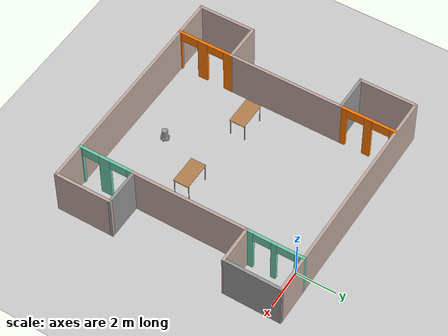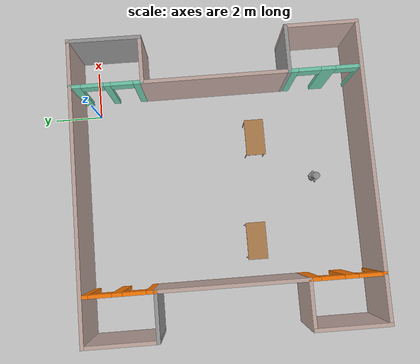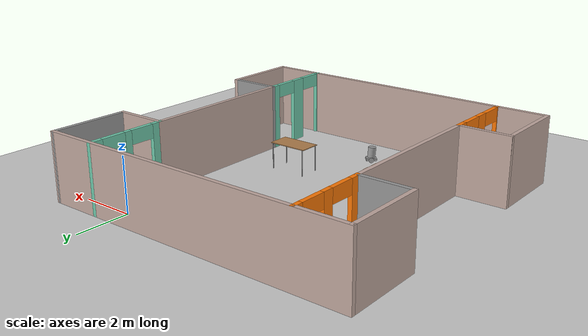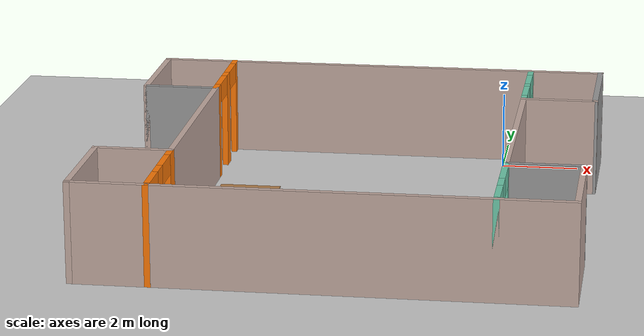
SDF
<sdf version="1.6">
 <world name="default">
  <model name="ground_plane">
   <static>1</static>
   <link name="link">
    <collision name="collision">
     <geometry><plane><normal>0 0 1</normal><size>100 100</size></plane></geometry>
     <surface><friction><ode><mu>100</mu><mu2>50</mu2></ode></friction></surface>
    </collision>
    <visual name="visual">
     <cast_shadows>0</cast_shadows>
     <geometry><plane><normal>0 0 1</normal><size>100 100</size></plane></geometry>
     <material>
      <script><uri>file://media/materials/scripts/gazebo.material</uri><name>Gazebo/Grey</name></script>
     </material>
    </visual>
   </link>
  </model>
  <model name="updated_buliding_2">
   <pose>-3.40181 -5.06678 0 0 -0 0</pose>
   <link name="Wall_0">
    <collision name="Wall_0_Collision">
     <geometry><box><size>12 0.15 2.5</size></box></geometry>
     <pose>0 0 1.25 0 -0 0</pose>
    </collision>
    <visual name="Wall_0_Visual">
     <pose>0 0 1.25 0 -0 0</pose>
     <geometry><box><size>12 0.15 2.5</size></box></geometry>
     <material>
      <script><uri>file://media/materials/scripts/gazebo.material</uri><name>Gazebo/Grey</name></script>
      <ambient>0.760784 0.662745 0.627451 1</ambient>
     </material>
     <meta><layer>0</layer></meta>
    </visual>
    <pose>0.009793 5.77474 0 0 -0 3.14159</pose>
   </link>
   <link name="Wall_10">
    <collision name="Wall_10_Collision">
     <geometry><box><size>2 0.15 2.5</size></box></geometry>
     <pose>0 0 1.25 0 -0 0</pose>
    </collision>
    <visual name="Wall_10_Visual">
     <pose>0 0 1.25 0 -0 0</pose>
     <geometry><box><size>2 0.15 2.5</size></box></geometry>
     <material>
      <script><uri>file://media/materials/scripts/gazebo.material</uri><name>Gazebo/Grey</name></script>
      <ambient>1 1 1 1</ambient>
     </material>
     <meta><layer>0</layer></meta>
    </visual>
    <pose>-4.99021 2.92474 0 0 -0 0</pose>
   </link>
   <link name="Wall_12">
    <collision name="Wall_12_Collision">
     <geometry><box><size>6 0.15 2.5</size></box></geometry>
     <pose>0 0 1.25 0 -0 0</pose>
    </collision>
    <visual name="Wall_12_Visual">
     <pose>0 0 1.25 0 -0 0</pose>
     <geometry><box><size>6 0.15 2.5</size></box></geometry>
     <material>
      <script><uri>file://media/materials/scripts/gazebo.material</uri><name>Gazebo/Grey</name></script>
      <ambient>0.760784 0.662745 0.627451 1</ambient>
     </material>
     <meta><layer>0</layer></meta>
    </visual>
    <pose>-4.06521 -0.000264 0 0 0 -1.5708</pose>
   </link>
   <link name="Wall_14">
    <collision name="Wall_14_Collision">
     <geometry><box><size>2.02011 0.15 2.5</size></box></geometry>
     <pose>0 0 1.25 0 -0 0</pose>
    </collision>
    <visual name="Wall_14_Visual">
     <pose>0 0 1.25 0 -0 0</pose>
     <geometry><box><size>2.02011 0.15 2.5</size></box></geometry>
     <material>
      <script><uri>file://media/materials/scripts/gazebo.material</uri><name>Gazebo/Grey</name></script>
      <ambient>0.760784 0.662745 0.627451 1</ambient>
     </material>
     <meta><layer>0</layer></meta>
    </visual>
    <pose>-5.00026 -2.92526 0 0 -0 3.14159</pose>
   </link>
   <link name="Wall_16">
    <collision name="Wall_16_Collision">
     <geometry><box><size>3 0.15 2.5</size></box></geometry>
     <pose>0 0 1.25 0 -0 0</pose>
    </collision>
    <visual name="Wall_16_Visual">
     <pose>0 0 1.25 0 -0 0</pose>
     <geometry><box><size>3 0.15 2.5</size></box></geometry>
     <material>
      <script><uri>file://media/materials/scripts/gazebo.material</uri><name>Gazebo/Grey</name></script>
      <ambient>0.760784 0.662745 0.627451 1</ambient>
     </material>
     <meta><layer>0</layer></meta>
    </visual>
    <pose>-5.93532 -4.35026 0 0 0 -1.5708</pose>
   </link>
   <link name="Wall_18">
    <collision name="Wall_18_Collision">
     <geometry><box><size>12 0.15 2.5</size></box></geometry>
     <pose>0 0 1.25 0 -0 0</pose>
    </collision>
    <visual name="Wall_18_Visual">
     <pose>0 0 1.25 0 -0 0</pose>
     <geometry><box><size>12 0.15 2.5</size></box></geometry>
     <material>
      <script><uri>file://media/materials/scripts/gazebo.material</uri><name>Gazebo/Grey</name></script>
      <ambient>0.760784 0.662745 0.627451 1</ambient>
     </material>
     <meta><layer>0</layer></meta>
    </visual>
    <pose>-0.01032 -5.77526 0 0 -0 0</pose>
   </link>
   <link name="Wall_2">
    <collision name="Wall_2_Collision">
     <geometry><box><size>3 0.15 2.5</size></box></geometry>
     <pose>0 0 1.25 0 -0 0</pose>
    </collision>
    <visual name="Wall_2_Visual">
     <pose>0 0 1.25 0 -0 0</pose>
     <geometry><box><size>3 0.15 2.5</size></box></geometry>
     <material>
      <script><uri>file://media/materials/scripts/gazebo.material</uri><name>Gazebo/Grey</name></script>
      <ambient>0.760784 0.662745 0.627451 1</ambient>
     </material>
     <meta><layer>0</layer></meta>
    </visual>
    <pose>-5.91521 4.34974 0 0 0 -1.5708</pose>
   </link>
   <link name="Wall_20">
    <collision name="Wall_20_Collision">
     <geometry><box><size>3 0.15 2.5</size></box></geometry>
     <pose>0 0 1.25 0 -0 0</pose>
    </collision>
    <visual name="Wall_20_Visual">
     <pose>0 0 1.25 0 -0 0</pose>
     <geometry><box><size>3 0.15 2.5</size></box></geometry>
     <material>
      <script><uri>file://media/materials/scripts/gazebo.material</uri><name>Gazebo/Grey</name></script>
      <ambient>0.760784 0.662745 0.627451 1</ambient>
     </material>
     <meta><layer>0</layer></meta>
    </visual>
    <pose>5.91468 -4.35026 0 0 -0 1.5708</pose>
   </link>
   <link name="Wall_22">
    <collision name="Wall_22_Collision">
     <geometry><box><size>2 0.15 2.5</size></box></geometry>
     <pose>0 0 1.25 0 -0 0</pose>
    </collision>
    <visual name="Wall_22_Visual">
     <pose>0 0 1.25 0 -0 0</pose>
     <geometry><box><size>2 0.15 2.5</size></box></geometry>
     <material>
      <script><uri>file://media/materials/scripts/gazebo.material</uri><name>Gazebo/Grey</name></script>
      <ambient>1 1 1 1</ambient>
     </material>
     <meta><layer>0</layer></meta>
    </visual>
    <pose>4.98968 -2.92526 0 0 -0 3.14159</pose>
   </link>
   <link name="Wall_24">
    <collision name="Wall_24_Collision">
     <geometry><box><size>6 0.15 2.5</size></box></geometry>
     <pose>0 0 1.25 0 -0 0</pose>
    </collision>
    <visual name="Wall_24_Visual">
     <pose>0 0 1.25 0 -0 0</pose>
     <geometry><box><size>6 0.15 2.5</size></box></geometry>
     <material>
      <script><uri>file://media/materials/scripts/gazebo.material</uri><name>Gazebo/Grey</name></script>
      <ambient>0.760784 0.662745 0.627451 1</ambient>
     </material>
     <meta><layer>0</layer></meta>
    </visual>
    <pose>4.06468 -0.000264 0 0 -0 1.5708</pose>
   </link>
   <link name="Wall_28">
    <collision name="Wall_28_Collision">
     <geometry><box><size>2 0.15 2.5</size></box></geometry>
     <pose>0 0 1.25 0 -0 0</pose>
    </collision>
    <visual name="Wall_28_Visual">
     <pose>0 0 1.25 0 -0 0</pose>
     <geometry><box><size>2 0.15 2.5</size></box></geometry>
     <material>
      <script><uri>file://media/materials/scripts/gazebo.material</uri><name>Gazebo/Grey</name></script>
      <ambient>0.760784 0.662745 0.627451 1</ambient>
     </material>
     <meta><layer>0</layer></meta>
    </visual>
    <pose>4.98968 2.92474 0 0 -0 0</pose>
   </link>
   <link name="Wall_30">
    <collision name="Wall_30_Collision">
     <geometry><box><size>3.00007 0.15 2.5</size></box></geometry>
     <pose>0 0 1.25 0 -0 0</pose>
    </collision>
    <visual name="Wall_30_Visual">
     <pose>0 0 1.25 0 -0 0</pose>
     <geometry><box><size>3.00007 0.15 2.5</size></box></geometry>
     <material>
      <script><uri>file://media/materials/scripts/gazebo.material</uri><name>Gazebo/Grey</name></script>
      <ambient>1 1 1 1</ambient>
     </material>
     <meta><layer>0</layer></meta>
    </visual>
    <pose>5.92474 4.34974 0 0 -0 1.56374</pose>
   </link>
   <link name="Wall_34">
    <pose>-4.06521 4.34974 0 0 -0 1.5708</pose>
    <visual name="Wall_34_Visual_0">
     <pose>-1.2872 0 1.25 0 -0 0</pose>
     <geometry><box><size>0.425608 0.15 2.5</size></box></geometry>
     <material>
      <script><uri>file://media/materials/scripts/gazebo.material</uri><name>Gazebo/Grey</name></script>
      <ambient>0.996078 0.47451 0.0196078 1</ambient>
     </material>
     <meta><layer>0</layer></meta>
    </visual>
    <collision name="Wall_34_Collision_0">
     <geometry><box><size>0.425608 0.15 2.5</size></box></geometry>
     <pose>-1.2872 0 1.25 0 -0 0</pose>
    </collision>
    <visual name="Wall_34_Visual_1">
     <pose>0.021651 0 1.25 0 -0 0</pose>
     <geometry><box><size>0.392085 0.15 2.5</size></box></geometry>
     <material>
      <script><uri>file://media/materials/scripts/gazebo.material</uri><name>Gazebo/Grey</name></script>
      <ambient>0.996078 0.47451 0.0196078 1</ambient>
     </material>
     <meta><layer>0</layer></meta>
    </visual>
    <collision name="Wall_34_Collision_1">
     <geometry><box><size>0.392085 0.15 2.5</size></box></geometry>
     <pose>0.021651 0 1.25 0 -0 0</pose>
    </collision>
    <visual name="Wall_34_Visual_2">
     <pose>1.30885 0 1.25 0 -0 0</pose>
     <geometry><box><size>0.382306 0.15 2.5</size></box></geometry>
     <material>
      <script><uri>file://media/materials/scripts/gazebo.material</uri><name>Gazebo/Grey</name></script>
      <ambient>0.996078 0.47451 0.0196078 1</ambient>
     </material>
     <meta><layer>0</layer></meta>
    </visual>
    <collision name="Wall_34_Collision_2">
     <geometry><box><size>0.382306 0.15 2.5</size></box></geometry>
     <pose>1.30885 0 1.25 0 -0 0</pose>
    </collision>
    <visual name="Wall_34_Visual_3">
     <pose>-0.624392 0 2.25 0 -0 0</pose>
     <geometry><box><size>0.9 0.15 0.5</size></box></geometry>
     <material>
      <script><uri>file://media/materials/scripts/gazebo.material</uri><name>Gazebo/Grey</name></script>
      <ambient>0.996078 0.47451 0.0196078 1</ambient>
     </material>
     <meta><layer>0</layer></meta>
    </visual>
    <collision name="Wall_34_Collision_3">
     <geometry><box><size>0.9 0.15 0.5</size></box></geometry>
     <pose>-0.624392 0 2.25 0 -0 0</pose>
    </collision>
    <visual name="Wall_34_Visual_4">
     <pose>0.667694 0 2.25 0 -0 0</pose>
     <geometry><box><size>0.9 0.15 0.5</size></box></geometry>
     <material>
      <script><uri>file://media/materials/scripts/gazebo.material</uri><name>Gazebo/Grey</name></script>
      <ambient>0.996078 0.47451 0.0196078 1</ambient>
     </material>
     <meta><layer>0</layer></meta>
    </visual>
    <collision name="Wall_34_Collision_4">
     <geometry><box><size>0.9 0.15 0.5</size></box></geometry>
     <pose>0.667694 0 2.25 0 -0 0</pose>
    </collision>
   </link>
   <link name="Wall_36">
    <pose>4.06468 4.34974 0 0 -0 1.5708</pose>
    <visual name="Wall_36_Visual_0">
     <pose>-1.2872 0 1.25 0 -0 0</pose>
     <geometry><box><size>0.425608 0.15 2.5</size></box></geometry>
     <material>
      <script><uri>file://media/materials/scripts/gazebo.material</uri><name>Gazebo/Grey</name></script>
      <ambient>0.435294 0.796078 0.67451 1</ambient>
     </material>
     <meta><layer>0</layer></meta>
    </visual>
    <collision name="Wall_36_Collision_0">
     <geometry><box><size>0.425608 0.15 2.5</size></box></geometry>
     <pose>-1.2872 0 1.25 0 -0 0</pose>
    </collision>
    <visual name="Wall_36_Visual_1">
     <pose>-0.039877 0 1.25 0 -0 0</pose>
     <geometry><box><size>0.26903 0.15 2.5</size></box></geometry>
     <material>
      <script><uri>file://media/materials/scripts/gazebo.material</uri><name>Gazebo/Grey</name></script>
      <ambient>0.435294 0.796078 0.67451 1</ambient>
     </material>
     <meta><layer>0</layer></meta>
    </visual>
    <collision name="Wall_36_Collision_1">
     <geometry><box><size>0.26903 0.15 2.5</size></box></geometry>
     <pose>-0.039877 0 1.25 0 -0 0</pose>
    </collision>
    <visual name="Wall_36_Visual_2">
     <pose>1.24732 0 1.25 0 -0 0</pose>
     <geometry><box><size>0.505362 0.15 2.5</size></box></geometry>
     <material>
      <script><uri>file://media/materials/scripts/gazebo.material</uri><name>Gazebo/Grey</name></script>
      <ambient>0.435294 0.796078 0.67451 1</ambient>
     </material>
     <meta><layer>0</layer></meta>
    </visual>
    <collision name="Wall_36_Collision_2">
     <geometry><box><size>0.505362 0.15 2.5</size></box></geometry>
     <pose>1.24732 0 1.25 0 -0 0</pose>
    </collision>
    <visual name="Wall_36_Visual_3">
     <pose>-0.624392 0 2.25 0 -0 0</pose>
     <geometry><box><size>0.9 0.15 0.5</size></box></geometry>
     <material>
      <script><uri>file://media/materials/scripts/gazebo.material</uri><name>Gazebo/Grey</name></script>
      <ambient>0.435294 0.796078 0.67451 1</ambient>
     </material>
     <meta><layer>0</layer></meta>
    </visual>
    <collision name="Wall_36_Collision_3">
     <geometry><box><size>0.9 0.15 0.5</size></box></geometry>
     <pose>-0.624392 0 2.25 0 -0 0</pose>
    </collision>
    <visual name="Wall_36_Visual_4">
     <pose>0.544638 0 2.25 0 -0 0</pose>
     <geometry><box><size>0.9 0.15 0.5</size></box></geometry>
     <material>
      <script><uri>file://media/materials/scripts/gazebo.material</uri><name>Gazebo/Grey</name></script>
      <ambient>0.435294 0.796078 0.67451 1</ambient>
     </material>
     <meta><layer>0</layer></meta>
    </visual>
    <collision name="Wall_36_Collision_4">
     <geometry><box><size>0.9 0.15 0.5</size></box></geometry>
     <pose>0.544638 0 2.25 0 -0 0</pose>
    </collision>
   </link>
   <link name="Wall_38">
    <pose>4.06468 -4.35026 0 0 0 -1.5708</pose>
    <visual name="Wall_38_Visual_0">
     <pose>-1.29037 0 1.25 0 -0 0</pose>
     <geometry><box><size>0.419265 0.15 2.5</size></box></geometry>
     <material>
      <script><uri>file://media/materials/scripts/gazebo.material</uri><name>Gazebo/Grey</name></script>
      <ambient>0.435294 0.796078 0.67451 1</ambient>
     </material>
     <meta><layer>0</layer></meta>
    </visual>
    <collision name="Wall_38_Collision_0">
     <geometry><box><size>0.419265 0.15 2.5</size></box></geometry>
     <pose>-1.29037 0 1.25 0 -0 0</pose>
    </collision>
    <visual name="Wall_38_Visual_1">
     <pose>0.107599 0 1.25 0 -0 0</pose>
     <geometry><box><size>0.576669 0.15 2.5</size></box></geometry>
     <material>
      <script><uri>file://media/materials/scripts/gazebo.material</uri><name>Gazebo/Grey</name></script>
      <ambient>0.435294 0.796078 0.67451 1</ambient>
     </material>
     <meta><layer>0</layer></meta>
    </visual>
    <collision name="Wall_38_Collision_1">
     <geometry><box><size>0.576669 0.15 2.5</size></box></geometry>
     <pose>0.107599 0 1.25 0 -0 0</pose>
    </collision>
    <visual name="Wall_38_Visual_2">
     <pose>1.39797 0 1.25 0 -0 0</pose>
     <geometry><box><size>0.204066 0.15 2.5</size></box></geometry>
     <material>
      <script><uri>file://media/materials/scripts/gazebo.material</uri><name>Gazebo/Grey</name></script>
      <ambient>0.435294 0.796078 0.67451 1</ambient>
     </material>
     <meta><layer>0</layer></meta>
    </visual>
    <collision name="Wall_38_Collision_2">
     <geometry><box><size>0.204066 0.15 2.5</size></box></geometry>
     <pose>1.39797 0 1.25 0 -0 0</pose>
    </collision>
    <visual name="Wall_38_Visual_3">
     <pose>-0.630735 0 2.25 0 -0 0</pose>
     <geometry><box><size>0.9 0.15 0.5</size></box></geometry>
     <material>
      <script><uri>file://media/materials/scripts/gazebo.material</uri><name>Gazebo/Grey</name></script>
      <ambient>0.435294 0.796078 0.67451 1</ambient>
     </material>
     <meta><layer>0</layer></meta>
    </visual>
    <collision name="Wall_38_Collision_3">
     <geometry><box><size>0.9 0.15 0.5</size></box></geometry>
     <pose>-0.630735 0 2.25 0 -0 0</pose>
    </collision>
    <visual name="Wall_38_Visual_4">
     <pose>0.845934 0 2.25 0 -0 0</pose>
     <geometry><box><size>0.9 0.15 0.5</size></box></geometry>
     <material>
      <script><uri>file://media/materials/scripts/gazebo.material</uri><name>Gazebo/Grey</name></script>
      <ambient>0.435294 0.796078 0.67451 1</ambient>
     </material>
     <meta><layer>0</layer></meta>
    </visual>
    <collision name="Wall_38_Collision_4">
     <geometry><box><size>0.9 0.15 0.5</size></box></geometry>
     <pose>0.845934 0 2.25 0 -0 0</pose>
    </collision>
   </link>
   <link name="Wall_40">
    <pose>-4.06521 -4.35026 0 0 0 -1.5708</pose>
    <visual name="Wall_40_Visual_0">
     <pose>-1.2596 0 1.25 0 -0 0</pose>
     <geometry><box><size>0.480793 0.15 2.5</size></box></geometry>
     <material>
      <script><uri>file://media/materials/scripts/gazebo.material</uri><name>Gazebo/Grey</name></script>
      <ambient>0.996078 0.47451 0.0196078 1</ambient>
     </material>
     <meta><layer>0</layer></meta>
    </visual>
    <collision name="Wall_40_Collision_0">
     <geometry><box><size>0.480793 0.15 2.5</size></box></geometry>
     <pose>-1.2596 0 1.25 0 -0 0</pose>
    </collision>
    <visual name="Wall_40_Visual_1">
     <pose>0.138363 0 1.25 0 -0 0</pose>
     <geometry><box><size>0.515141 0.15 2.5</size></box></geometry>
     <material>
      <script><uri>file://media/materials/scripts/gazebo.material</uri><name>Gazebo/Grey</name></script>
      <ambient>0.996078 0.47451 0.0196078 1</ambient>
     </material>
     <meta><layer>0</layer></meta>
    </visual>
    <collision name="Wall_40_Collision_1">
     <geometry><box><size>0.515141 0.15 2.5</size></box></geometry>
     <pose>0.138363 0 1.25 0 -0 0</pose>
    </collision>
    <visual name="Wall_40_Visual_2">
     <pose>1.39797 0 1.25 0 -0 0</pose>
     <geometry><box><size>0.204066 0.15 2.5</size></box></geometry>
     <material>
      <script><uri>file://media/materials/scripts/gazebo.material</uri><name>Gazebo/Grey</name></script>
      <ambient>0.996078 0.47451 0.0196078 1</ambient>
     </material>
     <meta><layer>0</layer></meta>
    </visual>
    <collision name="Wall_40_Collision_2">
     <geometry><box><size>0.204066 0.15 2.5</size></box></geometry>
     <pose>1.39797 0 1.25 0 -0 0</pose>
    </collision>
    <visual name="Wall_40_Visual_3">
     <pose>-0.569207 0 2.25 0 -0 0</pose>
     <geometry><box><size>0.9 0.15 0.5</size></box></geometry>
     <material>
      <script><uri>file://media/materials/scripts/gazebo.material</uri><name>Gazebo/Grey</name></script>
      <ambient>0.996078 0.47451 0.0196078 1</ambient>
     </material>
     <meta><layer>0</layer></meta>
    </visual>
    <collision name="Wall_40_Collision_3">
     <geometry><box><size>0.9 0.15 0.5</size></box></geometry>
     <pose>-0.569207 0 2.25 0 -0 0</pose>
    </collision>
    <visual name="Wall_40_Visual_4">
     <pose>0.845934 0 2.25 0 -0 0</pose>
     <geometry><box><size>0.9 0.15 0.5</size></box></geometry>
     <material>
      <script><uri>file://media/materials/scripts/gazebo.material</uri><name>Gazebo/Grey</name></script>
      <ambient>0.996078 0.47451 0.0196078 1</ambient>
     </material>
     <meta><layer>0</layer></meta>
    </visual>
    <collision name="Wall_40_Collision_4">
     <geometry><box><size>0.9 0.15 0.5</size></box></geometry>
     <pose>0.845934 0 2.25 0 -0 0</pose>
    </collision>
   </link>
   <static>1</static>
  </model>
  <model name="table">
   <static>1</static>
   <link name="link">
    <collision name="surface">
     <pose>0 0 1 0 -0 0</pose>
     <geometry><box><size>1.5 0.8 0.03</size></box></geometry>
     <surface><friction><ode><mu>0.6</mu><mu2>0.6</mu2></ode></friction></surface>
    </collision>
    <visual name="visual1">
     <pose>0 0 1 0 -0 0</pose>
     <geometry><box><size>1.5 0.8 0.03</size></box></geometry>
     <material>
      <script><uri>file://media/materials/scripts/gazebo.material</uri><name>Gazebo/Wood</name></script>
     </material>
    </visual>
    <collision name="front_left_leg">
     <pose>0.68 0.38 0.5 0 -0 0</pose>
     <geometry><cylinder><radius>0.02</radius><length>1</length></cylinder></geometry>
    </collision>
    <visual name="front_left_leg">
     <pose>0.68 0.38 0.5 0 -0 0</pose>
     <geometry><cylinder><radius>0.02</radius><length>1</length></cylinder></geometry>
     <material>
      <script><uri>file://media/materials/scripts/gazebo.material</uri><name>Gazebo/Grey</name></script>
     </material>
    </visual>
    <collision name="front_right_leg">
     <pose>0.68 -0.38 0.5 0 -0 0</pose>
     <geometry><cylinder><radius>0.02</radius><length>1</length></cylinder></geometry>
    </collision>
    <visual name="front_right_leg">
     <pose>0.68 -0.38 0.5 0 -0 0</pose>
     <geometry><cylinder><radius>0.02</radius><length>1</length></cylinder></geometry>
     <material>
      <script><uri>file://media/materials/scripts/gazebo.material</uri><name>Gazebo/Grey</name></script>
     </material>
    </visual>
    <collision name="back_right_leg">
     <pose>-0.68 -0.38 0.5 0 -0 0</pose>
     <geometry><cylinder><radius>0.02</radius><length>1</length></cylinder></geometry>
    </collision>
    <visual name="back_right_leg">
     <pose>-0.68 -0.38 0.5 0 -0 0</pose>
     <geometry><cylinder><radius>0.02</radius><length>1</length></cylinder></geometry>
     <material>
      <script><uri>file://media/materials/scripts/gazebo.material</uri><name>Gazebo/Grey</name></script>
     </material>
    </visual>
    <collision name="back_left_leg">
     <pose>-0.68 0.38 0.5 0 -0 0</pose>
     <geometry><cylinder><radius>0.02</radius><length>1</length></cylinder></geometry>
    </collision>
    <visual name="back_left_leg">
     <pose>-0.68 0.38 0.5 0 -0 0</pose>
     <geometry><cylinder><radius>0.02</radius><length>1</length></cylinder></geometry>
     <material>
      <script><uri>file://media/materials/scripts/gazebo.material</uri><name>Gazebo/Grey</name></script>
     </material>
    </visual>
   </link>
   <pose>-5.888 -6.2569 0 0 -0 0</pose>
  </model>
  <model name="table_1">
   <static>1</static>
   <link name="link">
    <collision name="surface">
     <pose>0 0 1 0 -0 0</pose>
     <geometry><box><size>1.5 0.8 0.03</size></box></geometry>
     <surface><friction><ode><mu>0.6</mu><mu2>0.6</mu2></ode></friction></surface>
    </collision>
    <visual name="visual1">
     <pose>0 0 1 0 -0 0</pose>
     <geometry><box><size>1.5 0.8 0.03</size></box></geometry>
     <material>
      <script><uri>file://media/materials/scripts/gazebo.material</uri><name>Gazebo/Wood</name></script>
     </material>
    </visual>
    <collision name="front_left_leg">
     <pose>0.68 0.38 0.5 0 -0 0</pose>
     <geometry><cylinder><radius>0.02</radius><length>1</length></cylinder></geometry>
    </collision>
    <visual name="front_left_leg">
     <pose>0.68 0.38 0.5 0 -0 0</pose>
     <geometry><cylinder><radius>0.02</radius><length>1</length></cylinder></geometry>
     <material>
      <script><uri>file://media/materials/scripts/gazebo.material</uri><name>Gazebo/Grey</name></script>
     </material>
    </visual>
    <collision name="front_right_leg">
     <pose>0.68 -0.38 0.5 0 -0 0</pose>
     <geometry><cylinder><radius>0.02</radius><length>1</length></cylinder></geometry>
    </collision>
    <visual name="front_right_leg">
     <pose>0.68 -0.38 0.5 0 -0 0</pose>
     <geometry><cylinder><radius>0.02</radius><length>1</length></cylinder></geometry>
     <material>
      <script><uri>file://media/materials/scripts/gazebo.material</uri><name>Gazebo/Grey</name></script>
     </material>
    </visual>
    <collision name="back_right_leg">
     <pose>-0.68 -0.38 0.5 0 -0 0</pose>
     <geometry><cylinder><radius>0.02</radius><length>1</length></cylinder></geometry>
    </collision>
    <visual name="back_right_leg">
     <pose>-0.68 -0.38 0.5 0 -0 0</pose>
     <geometry><cylinder><radius>0.02</radius><length>1</length></cylinder></geometry>
     <material>
      <script><uri>file://media/materials/scripts/gazebo.material</uri><name>Gazebo/Grey</name></script>
     </material>
    </visual>
    <collision name="back_left_leg">
     <pose>-0.68 0.38 0.5 0 -0 0</pose>
     <geometry><cylinder><radius>0.02</radius><length>1</length></cylinder></geometry>
    </collision>
    <visual name="back_left_leg">
     <pose>-0.68 0.38 0.5 0 -0 0</pose>
     <geometry><cylinder><radius>0.02</radius><length>1</length></cylinder></geometry>
     <material>
      <script><uri>file://media/materials/scripts/gazebo.material</uri><name>Gazebo/Grey</name></script>
     </material>
    </visual>
   </link>
   <pose>-1.59123 -6.54747 0 0 -0 0</pose>
  </model>
  <model name="my_new_humaniod_0">
   <link name="link_0">
    <pose>-0.003742 0.003896 0.007981 0 -0 0</pose>
    <inertial>
     <mass>1</mass>
     <inertia>
      <ixx>0.166667</ixx>
      <ixy>0</ixy>
      <ixz>0</ixz>
      <iyy>0.166667</iyy>
      <iyz>0</iyz>
      <izz>0.166667</izz>
     </inertia>
     <pose>0 0 0.5 0 -0 0</pose>
    </inertial>
    <visual name="visual">
     <geometry><box><size>0.3 0.4 0.1</size></box></geometry>
     <material>
      <lighting>1</lighting>
      <script><uri>file://media/materials/scripts/gazebo.material</uri><name>Gazebo/Grey</name></script>
      <ambient>0.2 0.2 0.2 0.2</ambient>
      <diffuse>0.2 0.2 0.2 0.2</diffuse>
      <specular>0.8 0.8 0.8 0.8</specular>
      <emissive>0.1 0.9 0.1 1</emissive>
      <shader type="vertex"><normal_map>__default__</normal_map></shader>
     </material>
    </visual>
    <collision name="collision">
     <geometry><box><size>0.3 0.4 0.1</size></box></geometry>
     <surface>
      <friction>
       <ode><mu>1</mu><mu2>1</mu2><fdir1>0 0 0</fdir1><slip1>0</slip1><slip2>0</slip2></ode>
       <torsional>
        <coefficient>1</coefficient>
        <patch_radius>0</patch_radius>
        <surface_radius>0</surface_radius>
        <use_patch_radius>1</use_patch_radius>
        <ode><slip>0</slip></ode>
       </torsional>
      </friction>
      <bounce><restitution_coefficient>0</restitution_coefficient><threshold>1e+06</threshold></bounce>
      <contact>
       <collide_without_contact>0</collide_without_contact>
       <collide_without_contact_bitmask>1</collide_without_contact_bitmask>
       <collide_bitmask>1</collide_bitmask>
       <ode>
        <soft_cfm>0</soft_cfm>
        <soft_erp>0.2</soft_erp>
        <kp>1e+13</kp>
        <kd>1</kd>
        <max_vel>0.01</max_vel>
        <min_depth>0</min_depth>
       </ode>
       <bullet>
        <split_impulse>1</split_impulse>
        <split_impulse_penetration_threshold>-0.01</split_impulse_penetration_threshold>
        <soft_cfm>0</soft_cfm>
        <soft_erp>0.2</soft_erp>
        <kp>1e+13</kp>
        <kd>1</kd>
       </bullet>
      </contact>
     </surface>
    </collision>
   </link>
   <link name="link_1">
    <pose>0.175062 -0.016193 0.007981 0 -0 0</pose>
    <inertial>
     <mass>1</mass>
     <inertia><ixx>0.145833</ixx><ixy>0</ixy><ixz>0</ixz><iyy>0.145833</iyy><iyz>0</iyz><izz>0.125</izz></inertia>
    </inertial>
    <visual name="visual">
     <pose>0 0 0 3.14159 1.56659 3.14159</pose>
     <geometry><cylinder><radius>0.1</radius><length>0.05</length></cylinder></geometry>
     <material>
      <lighting>1</lighting>
      <script><uri>file://media/materials/scripts/gazebo.material</uri><name>Gazebo/Grey</name></script>
      <ambient>0.2 0.2 0.2 0.2</ambient>
      <diffuse>0.2 0.2 0.2 0.2</diffuse>
      <specular>0.8 0.8 0.8 0.8</specular>
      <emissive>0.1 0.9 0.1 0.9</emissive>
      <shader type="vertex"><normal_map>__default__</normal_map></shader>
     </material>
    </visual>
    <collision name="collision">
     <pose>0 0 0 3.14159 1.56659 3.14159</pose>
     <geometry><cylinder><radius>0.1</radius><length>0.05</length></cylinder></geometry>
     <surface>
      <friction>
       <ode><mu>1</mu><mu2>1</mu2><fdir1>0 0 0</fdir1><slip1>0</slip1><slip2>0</slip2></ode>
       <torsional>
        <coefficient>1</coefficient>
        <patch_radius>0</patch_radius>
        <surface_radius>0</surface_radius>
        <use_patch_radius>1</use_patch_radius>
        <ode><slip>0</slip></ode>
       </torsional>
      </friction>
      <bounce><restitution_coefficient>0</restitution_coefficient><threshold>1e+06</threshold></bounce>
      <contact>
       <collide_without_contact>0</collide_without_contact>
       <collide_without_contact_bitmask>1</collide_without_contact_bitmask>
       <collide_bitmask>1</collide_bitmask>
       <ode>
        <soft_cfm>0</soft_cfm>
        <soft_erp>0.2</soft_erp>
        <kp>1e+13</kp>
        <kd>1</kd>
        <max_vel>0.01</max_vel>
        <min_depth>0</min_depth>
       </ode>
       <bullet>
        <split_impulse>1</split_impulse>
        <split_impulse_penetration_threshold>-0.01</split_impulse_penetration_threshold>
        <soft_cfm>0</soft_cfm>
        <soft_erp>0.2</soft_erp>
        <kp>1e+13</kp>
        <kd>1</kd>
       </bullet>
      </contact>
     </surface>
    </collision>
   </link>
   <link name="link_1_clone">
    <pose>-0.183416 0.021929 0.007981 0 -0 0</pose>
    <inertial>
     <mass>1</mass>
     <inertia><ixx>0.145833</ixx><ixy>0</ixy><ixz>0</ixz><iyy>0.145833</iyy><iyz>0</iyz><izz>0.125</izz></inertia>
    </inertial>
    <visual name="visual">
     <pose>0 0 0 3.14159 1.56659 3.14159</pose>
     <geometry><cylinder><radius>0.1</radius><length>0.05</length></cylinder></geometry>
     <material>
      <lighting>1</lighting>
      <script><uri>file://media/materials/scripts/gazebo.material</uri><name>Gazebo/Grey</name></script>
      <ambient>0.2 0.2 0.2 0.2</ambient>
      <diffuse>0.2 0.2 0.2 0.2</diffuse>
      <specular>0.8 0.8 0.8 0.8</specular>
      <emissive>0.1 0.9 0.1 1</emissive>
      <shader type="vertex"><normal_map>__default__</normal_map></shader>
     </material>
    </visual>
    <collision name="collision">
     <pose>0 0 0 3.14159 1.56659 3.14159</pose>
     <geometry><cylinder><radius>0.1</radius><length>0.05</length></cylinder></geometry>
     <surface>
      <friction>
       <ode><mu>1</mu><mu2>1</mu2><fdir1>0 0 0</fdir1><slip1>0</slip1><slip2>0</slip2></ode>
       <torsional>
        <coefficient>1</coefficient>
        <patch_radius>0</patch_radius>
        <surface_radius>0</surface_radius>
        <use_patch_radius>1</use_patch_radius>
        <ode><slip>0</slip></ode>
       </torsional>
      </friction>
      <bounce><restitution_coefficient>0</restitution_coefficient><threshold>1e+06</threshold></bounce>
      <contact>
       <collide_without_contact>0</collide_without_contact>
       <collide_without_contact_bitmask>1</collide_without_contact_bitmask>
       <collide_bitmask>1</collide_bitmask>
       <ode>
        <soft_cfm>0</soft_cfm>
        <soft_erp>0.2</soft_erp>
        <kp>1e+13</kp>
        <kd>1</kd>
        <max_vel>0.01</max_vel>
        <min_depth>0</min_depth>
       </ode>
       <bullet>
        <split_impulse>1</split_impulse>
        <split_impulse_penetration_threshold>-0.01</split_impulse_penetration_threshold>
        <soft_cfm>0</soft_cfm>
        <soft_erp>0.2</soft_erp>
        <kp>1e+13</kp>
        <kd>1</kd>
       </bullet>
      </contact>
     </surface>
    </collision>
   </link>
   <link name="link_2">
    <pose>0.011798 -0.146104 -0.044117 0 -0 0</pose>
    <inertial>
     <mass>1</mass>
     <inertia><ixx>0.1</ixx><ixy>0</ixy><ixz>0</ixz><iyy>0.1</iyy><iyz>0</iyz><izz>0.1</izz></inertia>
    </inertial>
    <visual name="visual">
     <geometry><sphere><radius>0.042</radius></sphere></geometry>
     <material>
      <lighting>1</lighting>
      <script><uri>file://media/materials/scripts/gazebo.material</uri><name>Gazebo/Grey</name></script>
      <ambient>0.3 0.3 0.3 1</ambient>
      <diffuse>0.7 0.7 0.7 1</diffuse>
      <specular>0.01 0.01 0.01 1</specular>
      <emissive>0 0 0 1</emissive>
      <shader type="vertex"><normal_map>__default__</normal_map></shader>
     </material>
    </visual>
    <collision name="collision">
     <geometry><sphere><radius>0.042</radius></sphere></geometry>
     <surface>
      <friction>
       <ode><mu>1</mu><mu2>1</mu2><fdir1>0 0 0</fdir1><slip1>0</slip1><slip2>0</slip2></ode>
       <torsional>
        <coefficient>1</coefficient>
        <patch_radius>0</patch_radius>
        <surface_radius>0</surface_radius>
        <use_patch_radius>1</use_patch_radius>
        <ode><slip>0</slip></ode>
       </torsional>
      </friction>
      <bounce><restitution_coefficient>0</restitution_coefficient><threshold>1e+06</threshold></bounce>
      <contact>
       <collide_without_contact>0</collide_without_contact>
       <collide_without_contact_bitmask>1</collide_without_contact_bitmask>
       <collide_bitmask>1</collide_bitmask>
       <ode>
        <soft_cfm>0</soft_cfm>
        <soft_erp>0.2</soft_erp>
        <kp>1e+13</kp>
        <kd>1</kd>
        <max_vel>0.01</max_vel>
        <min_depth>0</min_depth>
       </ode>
       <bullet>
        <split_impulse>1</split_impulse>
        <split_impulse_penetration_threshold>-0.01</split_impulse_penetration_threshold>
        <soft_cfm>0</soft_cfm>
        <soft_erp>0.2</soft_erp>
        <kp>1e+13</kp>
        <kd>1</kd>
       </bullet>
      </contact>
     </surface>
    </collision>
   </link>
   <link name="link_2_clone">
    <pose>-0.002185 0.153896 -0.042913 0 -0 0</pose>
    <inertial>
     <mass>1</mass>
     <inertia><ixx>0.1</ixx><ixy>0</ixy><ixz>0</ixz><iyy>0.1</iyy><iyz>0</iyz><izz>0.1</izz></inertia>
    </inertial>
    <visual name="visual">
     <geometry><sphere><radius>0.042</radius></sphere></geometry>
     <material>
      <lighting>1</lighting>
      <script><uri>file://media/materials/scripts/gazebo.material</uri><name>Gazebo/Grey</name></script>
      <ambient>0.3 0.3 0.3 1</ambient>
      <diffuse>0.7 0.7 0.7 1</diffuse>
      <specular>0.01 0.01 0.01 1</specular>
      <emissive>0 0 0 1</emissive>
      <shader type="vertex"><normal_map>__default__</normal_map></shader>
     </material>
    </visual>
    <collision name="collision">
     <geometry><sphere><radius>0.042</radius></sphere></geometry>
     <surface>
      <friction>
       <ode><mu>1</mu><mu2>1</mu2><fdir1>0 0 0</fdir1><slip1>0</slip1><slip2>0</slip2></ode>
       <torsional>
        <coefficient>1</coefficient>
        <patch_radius>0</patch_radius>
        <surface_radius>0</surface_radius>
        <use_patch_radius>1</use_patch_radius>
        <ode><slip>0</slip></ode>
       </torsional>
      </friction>
      <bounce><restitution_coefficient>0</restitution_coefficient><threshold>1e+06</threshold></bounce>
      <contact>
       <collide_without_contact>0</collide_without_contact>
       <collide_without_contact_bitmask>1</collide_without_contact_bitmask>
       <collide_bitmask>1</collide_bitmask>
       <ode>
        <soft_cfm>0</soft_cfm>
        <soft_erp>0.2</soft_erp>
        <kp>1e+13</kp>
        <kd>1</kd>
        <max_vel>0.01</max_vel>
        <min_depth>0</min_depth>
       </ode>
       <bullet>
        <split_impulse>1</split_impulse>
        <split_impulse_penetration_threshold>-0.01</split_impulse_penetration_threshold>
        <soft_cfm>0</soft_cfm>
        <soft_erp>0.2</soft_erp>
        <kp>1e+13</kp>
        <kd>1</kd>
       </bullet>
      </contact>
     </surface>
    </collision>
   </link>
   <link name="link_3">
    <pose>-0.003231 0.008705 0.280031 -0.033398 0.015473 0.327816</pose>
    <inertial>
     <mass>1</mass>
     <inertia><ixx>0.145833</ixx><ixy>0</ixy><ixz>0</ixz><iyy>0.145833</iyy><iyz>0</iyz><izz>0.125</izz></inertia>
    </inertial>
    <visual name="visual">
     <geometry><cylinder><radius>0.15</radius><length>0.4</length></cylinder></geometry>
     <material>
      <lighting>1</lighting>
      <script><uri>file://media/materials/scripts/gazebo.material</uri><name>Gazebo/Grey</name></script>
      <ambient>0.2 0.2 0.2 0.2</ambient>
      <diffuse>0.2 0.2 0.2 0.2</diffuse>
      <specular>0.2 0.2 0.2 0.2</specular>
      <emissive>0.1 0.9 0.1 1</emissive>
      <shader type="vertex"><normal_map>__default__</normal_map></shader>
     </material>
    </visual>
    <collision name="collision">
     <geometry><cylinder><radius>0.15</radius><length>0.4</length></cylinder></geometry>
     <surface>
      <friction>
       <ode><mu>1</mu><mu2>1</mu2><fdir1>0 0 0</fdir1><slip1>0</slip1><slip2>0</slip2></ode>
       <torsional>
        <coefficient>1</coefficient>
        <patch_radius>0</patch_radius>
        <surface_radius>0</surface_radius>
        <use_patch_radius>1</use_patch_radius>
        <ode><slip>0</slip></ode>
       </torsional>
      </friction>
      <bounce><restitution_coefficient>0</restitution_coefficient><threshold>1e+06</threshold></bounce>
      <contact>
       <collide_without_contact>0</collide_without_contact>
       <collide_without_contact_bitmask>1</collide_without_contact_bitmask>
       <collide_bitmask>1</collide_bitmask>
       <ode>
        <soft_cfm>0</soft_cfm>
        <soft_erp>0.2</soft_erp>
        <kp>1e+13</kp>
        <kd>1</kd>
        <max_vel>0.01</max_vel>
        <min_depth>0</min_depth>
       </ode>
       <bullet>
        <split_impulse>1</split_impulse>
        <split_impulse_penetration_threshold>-0.01</split_impulse_penetration_threshold>
        <soft_cfm>0</soft_cfm>
        <soft_erp>0.2</soft_erp>
        <kp>1e+13</kp>
        <kd>1</kd>
       </bullet>
      </contact>
     </surface>
    </collision>
   </link>
   <joint name="link_0_JOINT_11" type="fixed">
    <parent>link_0</parent>
    <child>link_3</child>
    <physics>
     <ode><limit><cfm>0</cfm><erp>0.2</erp></limit><suspension><cfm>0</cfm><erp>0.2</erp></suspension></ode>
    </physics>
   </joint>
   <joint name="link_0_JOINT_6" type="revolute">
    <parent>link_0</parent>
    <child>link_1_clone</child>
    <axis>
     <xyz>1 0 0</xyz>
     <use_parent_model_frame>0</use_parent_model_frame>
     <limit>
      <lower>-1.79769e+308</lower>
      <upper>1.79769e+308</upper>
      <effort>-1</effort>
      <velocity>-1</velocity>
     </limit>
     <dynamics>
      <spring_reference>0</spring_reference>
      <spring_stiffness>0</spring_stiffness>
      <damping>0</damping>
      <friction>0</friction>
     </dynamics>
    </axis>
    <physics>
     <ode><limit><cfm>0</cfm><erp>0.2</erp></limit><suspension><cfm>0</cfm><erp>0.2</erp></suspension></ode>
    </physics>
   </joint>
   <joint name="link_0_JOINT_7" type="revolute">
    <parent>link_0</parent>
    <child>link_1</child>
    <axis>
     <xyz>1 0 0</xyz>
     <use_parent_model_frame>0</use_parent_model_frame>
     <limit>
      <lower>-1.79769e+308</lower>
      <upper>1.79769e+308</upper>
      <effort>-1</effort>
      <velocity>-1</velocity>
     </limit>
     <dynamics>
      <spring_reference>0</spring_reference>
      <spring_stiffness>0</spring_stiffness>
      <damping>0</damping>
      <friction>0</friction>
     </dynamics>
    </axis>
    <physics>
     <ode><limit><cfm>0</cfm><erp>0.2</erp></limit><suspension><cfm>0</cfm><erp>0.2</erp></suspension></ode>
    </physics>
   </joint>
   <joint name="link_0_JOINT_8" type="ball">
    <parent>link_0</parent>
    <child>link_2</child>
    <physics>
     <ode><limit><cfm>0</cfm><erp>0.2</erp></limit><suspension><cfm>0</cfm><erp>0.2</erp></suspension></ode>
    </physics>
   </joint>
   <joint name="link_0_JOINT_9" type="ball">
    <parent>link_0</parent>
    <child>link_2_clone</child>
    <physics>
     <ode><limit><cfm>0</cfm><erp>0.2</erp></limit><suspension><cfm>0</cfm><erp>0.2</erp></suspension></ode>
    </physics>
   </joint>
   <static>0</static>
   <pose>-3.32754 -9.04683 0.092264 -0.048011 0.004677 2.31307</pose>
  </model>
 </world>
</sdf>
